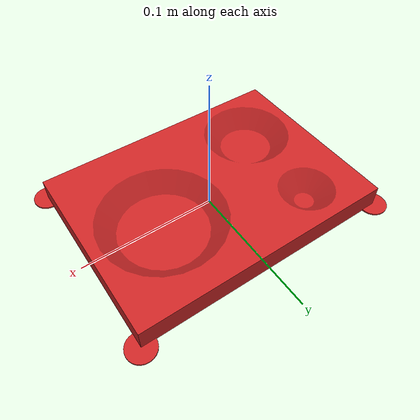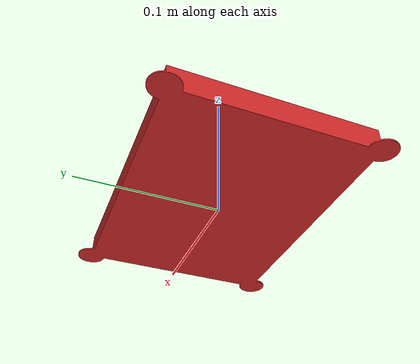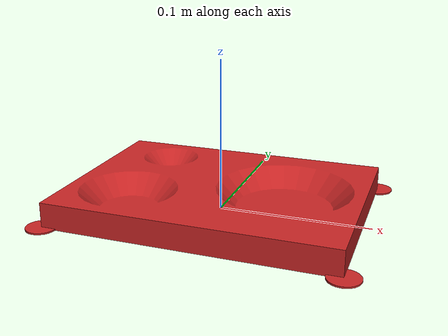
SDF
<?xml version="1.0" encoding="UTF-8"?>
<sdf version="1.5">
   <model name="kit_tray2">
      <static>true</static>
      <link name="link1">
         <collision name="collision1">
            <pose>0 0 0.0 0 0 0</pose>
            <geometry>
               <mesh>
                  <scale>0.0254 0.0254 0.0254</scale>
                  <uri>model://gear_support/meshes/kit_tray2_Centered_Zge0.stl</uri>
               </mesh>
            </geometry>
         </collision>
         <visual name="visual1">
            <pose>0 0 0 0 0 0</pose>
            <geometry>
               <mesh>
                  <scale>0.0254 0.0254 0.0254</scale>
                  <uri>model://gear_support/meshes/kit_tray2_Centered_Zge0.stl</uri>
               </mesh>
            </geometry>
            <material>
               <script>
                  <name>Gazebo/Red</name>
                  <uri>__default__</uri>
               </script>
            </material>
         </visual>
      </link>
   </model>
</sdf>
